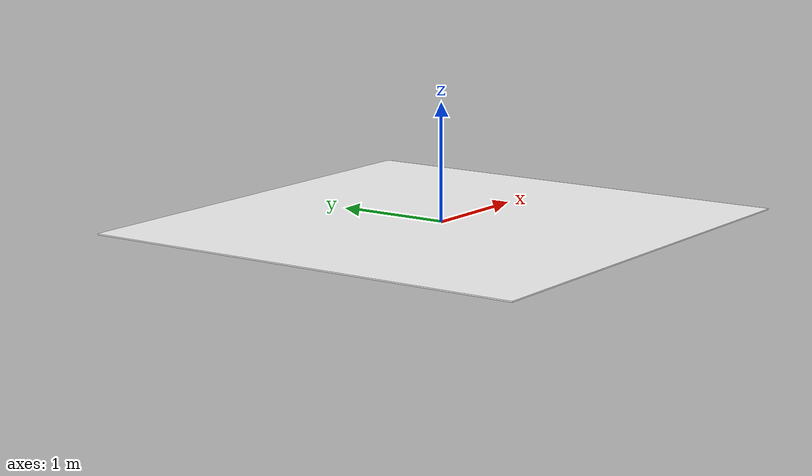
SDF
<?xml version="1.0" ?>
<sdf version="1.10">
  <model name="autorace_course">
    <static>true</static>
    <link name="course_link">
      <collision name="course_collision">
        <pose>0 0 0.005 0 0 0</pose>
        <geometry>
          <box><size>4 4 0.01</size></box>
        </geometry>
        <surface>
          <friction>
            <ode>
              <mu>100</mu>
              <mu2>50</mu2>
            </ode>
          </friction>
        </surface>
      </collision>
      <visual name="course_visual">
        <pose>0 0 0.005 0 0 0</pose>
        <cast_shadows>false</cast_shadows>
        <geometry>
	        <box><size>4 4 0.01</size></box>
        </geometry>
	              <material>
          <diffuse>1 1 1 1</diffuse>
          <specular>0.1 0.1 0.1 1</specular>
          <pbr>
            <metal>
              <albedo_map>model://autorace_course/materials/textures/course.png</albedo_map>
              <metalness>0.0</metalness>
              <roughness>0.9</roughness>
            </metal>
          </pbr>
        </material>
      </visual>
    </link>
  </model>
</sdf>
